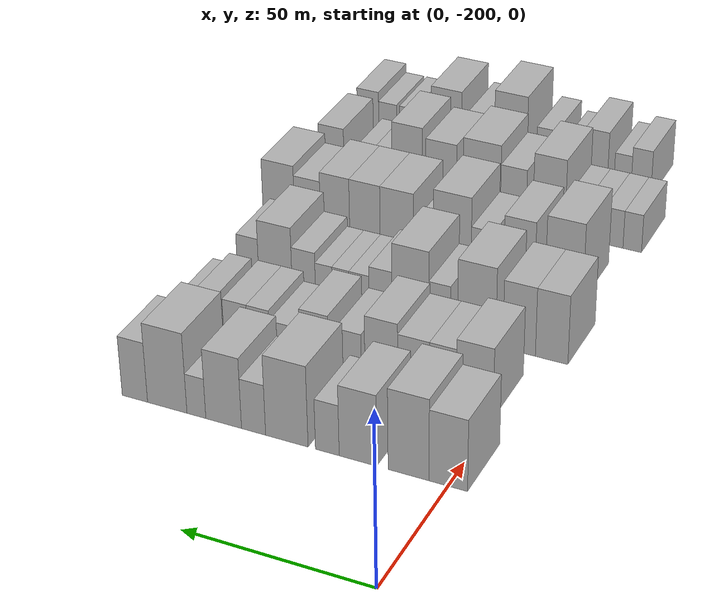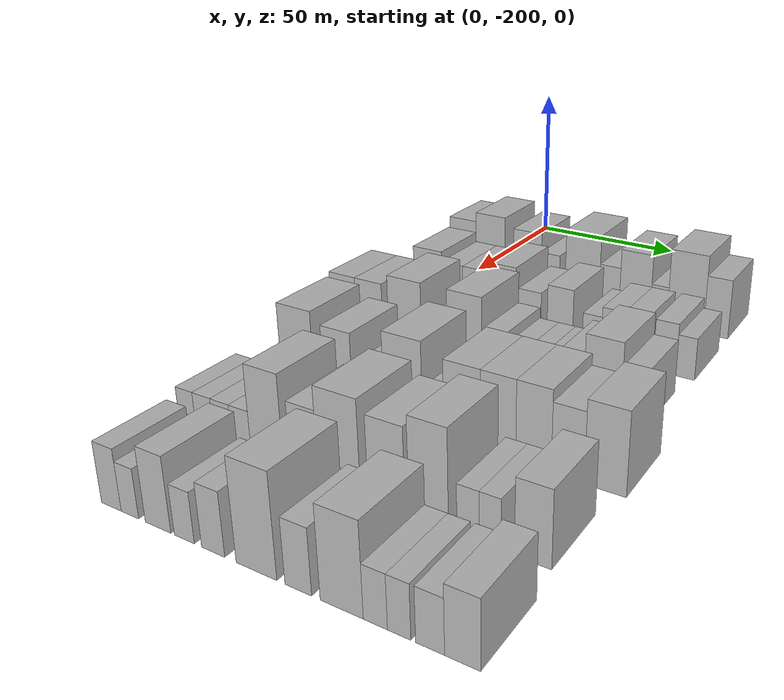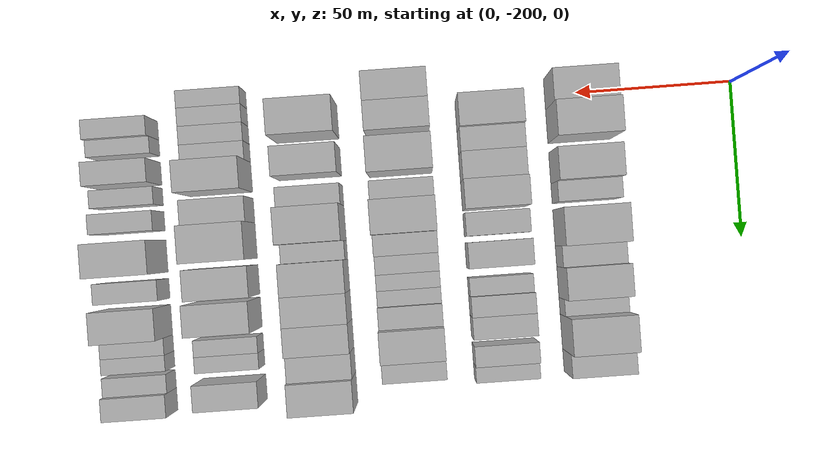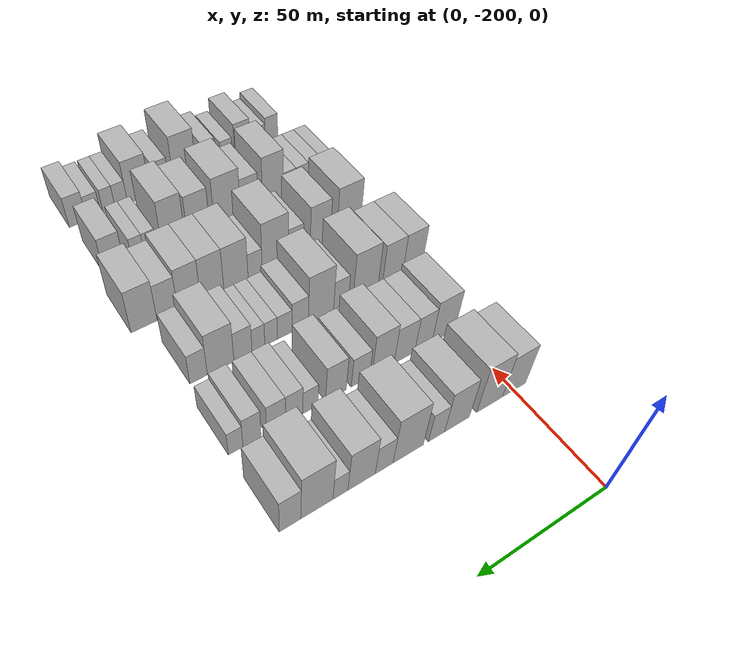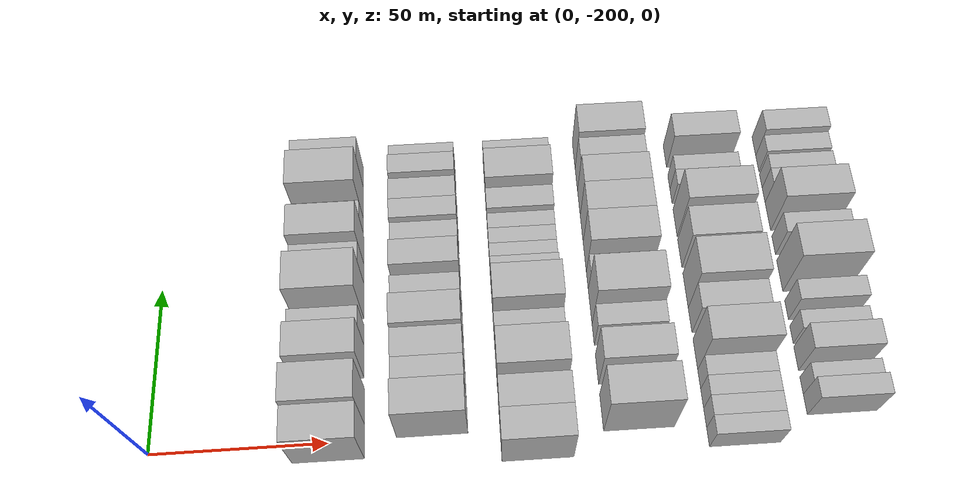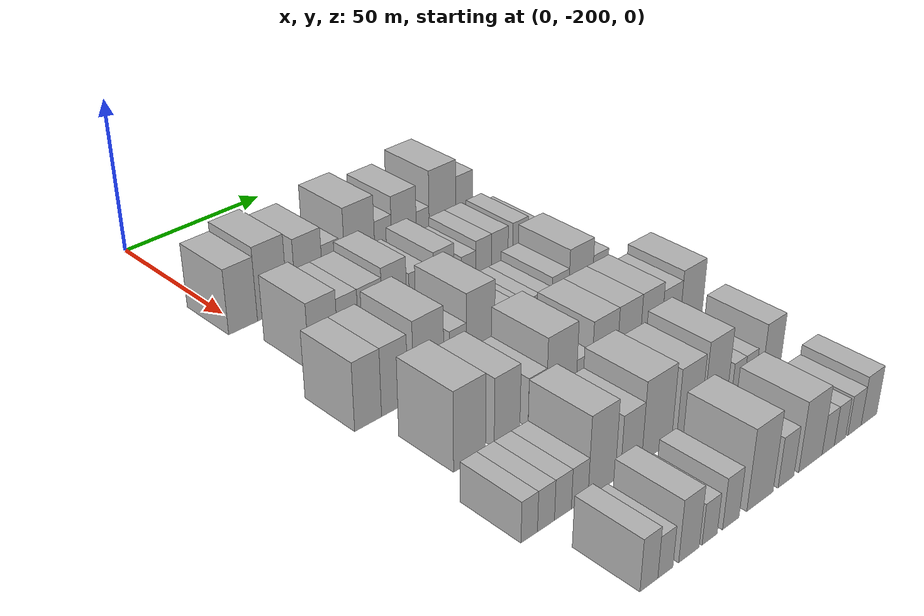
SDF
<sdf version="1.6">
 <world name="default">
  <model name="building_35">
   <static>1</static>
   <pose>50.0000 -200.0415 0 0.000000 0.000000 0.000000</pose>
   <link name="link">
    <pose>0 0 10.50 0 0 0</pose>
    <collision name="collision"><geometry><box><size>20.0000 9.9583 21.0000</size></box></geometry></collision>
    <visual name="visual">
     <cast_shadows>0</cast_shadows>
     <geometry><box><size>20.0000 9.9583 21.0000</size></box></geometry>
     <material>
      <script>
       <uri>model://HANNAS_wall/materials/scripts</uri>
       <uri>model://HANNAS_wall/materials/textures</uri>
       <name>vrc/HANNAS_wall</name>
      </script>
     </material>
    </visual>
   </link>
  </model>
  <model name="building_36">
   <static>1</static>
   <pose>50.0000 -189.6931 0 0.000000 0.000000 0.000000</pose>
   <link name="link">
    <pose>0 0 12.00 0 0 0</pose>
    <collision name="collision"><geometry><box><size>20.0000 10.7384 24.0000</size></box></geometry></collision>
    <visual name="visual">
     <cast_shadows>0</cast_shadows>
     <geometry><box><size>20.0000 10.7384 24.0000</size></box></geometry>
     <material>
      <script>
       <uri>model://HANNAS_wall/materials/scripts</uri>
       <uri>model://HANNAS_wall/materials/textures</uri>
       <name>vrc/HANNAS_wall</name>
      </script>
     </material>
    </visual>
   </link>
  </model>
  <model name="building_37">
   <static>1</static>
   <pose>50.0000 -176.3118 0 0.000000 0.000000 0.000000</pose>
   <link name="link">
    <pose>0 0 10.50 0 0 0</pose>
    <collision name="collision"><geometry><box><size>20.0000 10.0240 21.0000</size></box></geometry></collision>
    <visual name="visual">
     <cast_shadows>0</cast_shadows>
     <geometry><box><size>20.0000 10.0240 21.0000</size></box></geometry>
     <material>
      <script>
       <uri>model://HANNAS_wall/materials/scripts</uri>
       <uri>model://HANNAS_wall/materials/textures</uri>
       <name>vrc/HANNAS_wall</name>
      </script>
     </material>
    </visual>
   </link>
  </model>
  <model name="building_38">
   <static>1</static>
   <pose>50.0000 -168.1040 0 0.000000 0.000000 0.000000</pose>
   <link name="link">
    <pose>0 0 7.50 0 0 0</pose>
    <collision name="collision"><geometry><box><size>20.0000 6.3917 15.0000</size></box></geometry></collision>
    <visual name="visual">
     <cast_shadows>0</cast_shadows>
     <geometry><box><size>20.0000 6.3917 15.0000</size></box></geometry>
     <material>
      <script>
       <uri>model://HANNAS_wall/materials/scripts</uri>
       <uri>model://HANNAS_wall/materials/textures</uri>
       <name>vrc/HANNAS_wall</name>
      </script>
     </material>
    </visual>
   </link>
  </model>
  <model name="building_39">
   <static>1</static>
   <pose>50.0000 -157.1111 0 0.000000 0.000000 0.000000</pose>
   <link name="link">
    <pose>0 0 12.00 0 0 0</pose>
    <collision name="collision"><geometry><box><size>20.0000 11.5940 24.0000</size></box></geometry></collision>
    <visual name="visual">
     <cast_shadows>0</cast_shadows>
     <geometry><box><size>20.0000 11.5940 24.0000</size></box></geometry>
     <material>
      <script>
       <uri>model://HANNAS_wall/materials/scripts</uri>
       <uri>model://HANNAS_wall/materials/textures</uri>
       <name>vrc/HANNAS_wall</name>
      </script>
     </material>
    </visual>
   </link>
  </model>
  <model name="building_40">
   <static>1</static>
   <pose>50.0000 -147.9836 0 0.000000 0.000000 0.000000</pose>
   <link name="link">
    <pose>0 0 7.50 0 0 0</pose>
    <collision name="collision"><geometry><box><size>20.0000 6.6611 15.0000</size></box></geometry></collision>
    <visual name="visual">
     <cast_shadows>0</cast_shadows>
     <geometry><box><size>20.0000 6.6611 15.0000</size></box></geometry>
     <material>
      <script>
       <uri>model://HANNAS_wall/materials/scripts</uri>
       <uri>model://HANNAS_wall/materials/textures</uri>
       <name>vrc/HANNAS_wall</name>
      </script>
     </material>
    </visual>
   </link>
  </model>
  <model name="building_41">
   <static>1</static>
   <pose>50.0000 -139.6642 0 0.000000 0.000000 0.000000</pose>
   <link name="link">
    <pose>0 0 10.50 0 0 0</pose>
    <collision name="collision"><geometry><box><size>20.0000 9.9777 21.0000</size></box></geometry></collision>
    <visual name="visual">
     <cast_shadows>0</cast_shadows>
     <geometry><box><size>20.0000 9.9777 21.0000</size></box></geometry>
     <material>
      <script>
       <uri>model://HANNAS_wall/materials/scripts</uri>
       <uri>model://HANNAS_wall/materials/textures</uri>
       <name>vrc/HANNAS_wall</name>
      </script>
     </material>
    </visual>
   </link>
  </model>
  <model name="building_42">
   <static>1</static>
   <pose>50.0000 -132.0179 0 0.000000 0.000000 0.000000</pose>
   <link name="link">
    <pose>0 0 6.00 0 0 0</pose>
    <collision name="collision"><geometry><box><size>20.0000 5.3148 12.0000</size></box></geometry></collision>
    <visual name="visual">
     <cast_shadows>0</cast_shadows>
     <geometry><box><size>20.0000 5.3148 12.0000</size></box></geometry>
     <material>
      <script>
       <uri>model://HANNAS_wall/materials/scripts</uri>
       <uri>model://HANNAS_wall/materials/textures</uri>
       <name>vrc/HANNAS_wall</name>
      </script>
     </material>
    </visual>
   </link>
  </model>
  <model name="building_43">
   <static>1</static>
   <pose>50.0000 -123.7503 0 0.000000 0.000000 0.000000</pose>
   <link name="link">
    <pose>0 0 12.00 0 0 0</pose>
    <collision name="collision"><geometry><box><size>20.0000 11.2204 24.0000</size></box></geometry></collision>
    <visual name="visual">
     <cast_shadows>0</cast_shadows>
     <geometry><box><size>20.0000 11.2204 24.0000</size></box></geometry>
     <material>
      <script>
       <uri>model://HANNAS_wall/materials/scripts</uri>
       <uri>model://HANNAS_wall/materials/textures</uri>
       <name>vrc/HANNAS_wall</name>
      </script>
     </material>
    </visual>
   </link>
  </model>
  <model name="building_44">
   <static>1</static>
   <pose>50.0000 -114.4987 0 0.000000 0.000000 0.000000</pose>
   <link name="link">
    <pose>0 0 9.00 0 0 0</pose>
    <collision name="collision"><geometry><box><size>20.0000 7.2827 18.0000</size></box></geometry></collision>
    <visual name="visual">
     <cast_shadows>0</cast_shadows>
     <geometry><box><size>20.0000 7.2827 18.0000</size></box></geometry>
     <material>
      <script>
       <uri>model://HANNAS_wall/materials/scripts</uri>
       <uri>model://HANNAS_wall/materials/textures</uri>
       <name>vrc/HANNAS_wall</name>
      </script>
     </material>
    </visual>
   </link>
  </model>
  <model name="building_152">
   <static>1</static>
   <pose>79.0000 -194.5853 0 0.000000 0.000000 0.000000</pose>
   <link name="link">
    <pose>0 0 10.50 0 0 0</pose>
    <collision name="collision"><geometry><box><size>20.0000 10.0024 21.0000</size></box></geometry></collision>
    <visual name="visual">
     <cast_shadows>0</cast_shadows>
     <geometry><box><size>20.0000 10.0024 21.0000</size></box></geometry>
     <material>
      <script>
       <uri>model://HANNAS_wall/materials/scripts</uri>
       <uri>model://HANNAS_wall/materials/textures</uri>
       <name>vrc/HANNAS_wall</name>
      </script>
     </material>
    </visual>
   </link>
  </model>
  <model name="building_153">
   <static>1</static>
   <pose>79.0000 -185.9351 0 0.000000 0.000000 0.000000</pose>
   <link name="link">
    <pose>0 0 9.00 0 0 0</pose>
    <collision name="collision"><geometry><box><size>20.0000 7.2979 18.0000</size></box></geometry></collision>
    <visual name="visual">
     <cast_shadows>0</cast_shadows>
     <geometry><box><size>20.0000 7.2979 18.0000</size></box></geometry>
     <material>
      <script>
       <uri>model://HANNAS_wall/materials/scripts</uri>
       <uri>model://HANNAS_wall/materials/textures</uri>
       <name>vrc/HANNAS_wall</name>
      </script>
     </material>
    </visual>
   </link>
  </model>
  <model name="building_154">
   <static>1</static>
   <pose>79.0000 -177.9719 0 0.000000 0.000000 0.000000</pose>
   <link name="link">
    <pose>0 0 9.00 0 0 0</pose>
    <collision name="collision"><geometry><box><size>20.0000 8.6286 18.0000</size></box></geometry></collision>
    <visual name="visual">
     <cast_shadows>0</cast_shadows>
     <geometry><box><size>20.0000 8.6286 18.0000</size></box></geometry>
     <material>
      <script>
       <uri>model://HANNAS_wall/materials/scripts</uri>
       <uri>model://HANNAS_wall/materials/textures</uri>
       <name>vrc/HANNAS_wall</name>
      </script>
     </material>
    </visual>
   </link>
  </model>
  <model name="building_155">
   <static>1</static>
   <pose>79.0000 -169.1197 0 0.000000 0.000000 0.000000</pose>
   <link name="link">
    <pose>0 0 10.50 0 0 0</pose>
    <collision name="collision"><geometry><box><size>20.0000 9.0757 21.0000</size></box></geometry></collision>
    <visual name="visual">
     <cast_shadows>0</cast_shadows>
     <geometry><box><size>20.0000 9.0757 21.0000</size></box></geometry>
     <material>
      <script>
       <uri>model://HANNAS_wall/materials/scripts</uri>
       <uri>model://HANNAS_wall/materials/textures</uri>
       <name>vrc/HANNAS_wall</name>
      </script>
     </material>
    </visual>
   </link>
  </model>
  <model name="building_156">
   <static>1</static>
   <pose>79.0000 -159.9670 0 0.000000 0.000000 0.000000</pose>
   <link name="link">
    <pose>0 0 7.50 0 0 0</pose>
    <collision name="collision"><geometry><box><size>20.0000 7.2298 15.0000</size></box></geometry></collision>
    <visual name="visual">
     <cast_shadows>0</cast_shadows>
     <geometry><box><size>20.0000 7.2298 15.0000</size></box></geometry>
     <material>
      <script>
       <uri>model://HANNAS_wall/materials/scripts</uri>
       <uri>model://HANNAS_wall/materials/textures</uri>
       <name>vrc/HANNAS_wall</name>
      </script>
     </material>
    </visual>
   </link>
  </model>
  <model name="building_157">
   <static>1</static>
   <pose>79.0000 -150.3492 0 0.000000 0.000000 0.000000</pose>
   <link name="link">
    <pose>0 0 9.00 0 0 0</pose>
    <collision name="collision"><geometry><box><size>20.0000 8.0058 18.0000</size></box></geometry></collision>
    <visual name="visual">
     <cast_shadows>0</cast_shadows>
     <geometry><box><size>20.0000 8.0058 18.0000</size></box></geometry>
     <material>
      <script>
       <uri>model://HANNAS_wall/materials/scripts</uri>
       <uri>model://HANNAS_wall/materials/textures</uri>
       <name>vrc/HANNAS_wall</name>
      </script>
     </material>
    </visual>
   </link>
  </model>
  <model name="building_158">
   <static>1</static>
   <pose>79.0000 -140.4875 0 0.000000 0.000000 0.000000</pose>
   <link name="link">
    <pose>0 0 6.00 0 0 0</pose>
    <collision name="collision"><geometry><box><size>20.0000 5.7177 12.0000</size></box></geometry></collision>
    <visual name="visual">
     <cast_shadows>0</cast_shadows>
     <geometry><box><size>20.0000 5.7177 12.0000</size></box></geometry>
     <material>
      <script>
       <uri>model://HANNAS_wall/materials/scripts</uri>
       <uri>model://HANNAS_wall/materials/textures</uri>
       <name>vrc/HANNAS_wall</name>
      </script>
     </material>
    </visual>
   </link>
  </model>
  <model name="building_159">
   <static>1</static>
   <pose>79.0000 -134.4205 0 0.000000 0.000000 0.000000</pose>
   <link name="link">
    <pose>0 0 7.50 0 0 0</pose>
    <collision name="collision"><geometry><box><size>20.0000 6.4163 15.0000</size></box></geometry></collision>
    <visual name="visual">
     <cast_shadows>0</cast_shadows>
     <geometry><box><size>20.0000 6.4163 15.0000</size></box></geometry>
     <material>
      <script>
       <uri>model://HANNAS_wall/materials/scripts</uri>
       <uri>model://HANNAS_wall/materials/textures</uri>
       <name>vrc/HANNAS_wall</name>
      </script>
     </material>
    </visual>
   </link>
  </model>
  <model name="building_160">
   <static>1</static>
   <pose>79.0000 -127.7711 0 0.000000 0.000000 0.000000</pose>
   <link name="link">
    <pose>0 0 7.50 0 0 0</pose>
    <collision name="collision"><geometry><box><size>20.0000 6.8824 15.0000</size></box></geometry></collision>
    <visual name="visual">
     <cast_shadows>0</cast_shadows>
     <geometry><box><size>20.0000 6.8824 15.0000</size></box></geometry>
     <material>
      <script>
       <uri>model://HANNAS_wall/materials/scripts</uri>
       <uri>model://HANNAS_wall/materials/textures</uri>
       <name>vrc/HANNAS_wall</name>
      </script>
     </material>
    </visual>
   </link>
  </model>
  <model name="building_161">
   <static>1</static>
   <pose>79.0000 -119.1075 0 0.000000 0.000000 0.000000</pose>
   <link name="link">
    <pose>0 0 7.50 0 0 0</pose>
    <collision name="collision"><geometry><box><size>20.0000 6.4448 15.0000</size></box></geometry></collision>
    <visual name="visual">
     <cast_shadows>0</cast_shadows>
     <geometry><box><size>20.0000 6.4448 15.0000</size></box></geometry>
     <material>
      <script>
       <uri>model://HANNAS_wall/materials/scripts</uri>
       <uri>model://HANNAS_wall/materials/textures</uri>
       <name>vrc/HANNAS_wall</name>
      </script>
     </material>
    </visual>
   </link>
  </model>
  <model name="building_162">
   <static>1</static>
   <pose>79.0000 -113.2965 0 0.000000 0.000000 0.000000</pose>
   <link name="link">
    <pose>0 0 6.00 0 0 0</pose>
    <collision name="collision"><geometry><box><size>20.0000 5.1772 12.0000</size></box></geometry></collision>
    <visual name="visual">
     <cast_shadows>0</cast_shadows>
     <geometry><box><size>20.0000 5.1772 12.0000</size></box></geometry>
     <material>
      <script>
       <uri>model://HANNAS_wall/materials/scripts</uri>
       <uri>model://HANNAS_wall/materials/textures</uri>
       <name>vrc/HANNAS_wall</name>
      </script>
     </material>
    </visual>
   </link>
  </model>
  <model name="building_264">
   <static>1</static>
   <pose>108.0000 -203.7855 0 0.000000 0.000000 0.000000</pose>
   <link name="link">
    <pose>0 0 10.50 0 0 0</pose>
    <collision name="collision"><geometry><box><size>20.0000 8.9463 21.0000</size></box></geometry></collision>
    <visual name="visual">
     <cast_shadows>0</cast_shadows>
     <geometry><box><size>20.0000 8.9463 21.0000</size></box></geometry>
     <material>
      <script>
       <uri>model://HANNAS_wall/materials/scripts</uri>
       <uri>model://HANNAS_wall/materials/textures</uri>
       <name>vrc/HANNAS_wall</name>
      </script>
     </material>
    </visual>
   </link>
  </model>
  <model name="building_265">
   <static>1</static>
   <pose>108.0000 -194.8034 0 0.000000 0.000000 0.000000</pose>
   <link name="link">
    <pose>0 0 10.50 0 0 0</pose>
    <collision name="collision"><geometry><box><size>20.0000 9.0179 21.0000</size></box></geometry></collision>
    <visual name="visual">
     <cast_shadows>0</cast_shadows>
     <geometry><box><size>20.0000 9.0179 21.0000</size></box></geometry>
     <material>
      <script>
       <uri>model://HANNAS_wall/materials/scripts</uri>
       <uri>model://HANNAS_wall/materials/textures</uri>
       <name>vrc/HANNAS_wall</name>
      </script>
     </material>
    </visual>
   </link>
  </model>
  <model name="building_266">
   <static>1</static>
   <pose>108.0000 -182.8964 0 0.000000 0.000000 0.000000</pose>
   <link name="link">
    <pose>0 0 12.00 0 0 0</pose>
    <collision name="collision"><geometry><box><size>20.0000 10.7960 24.0000</size></box></geometry></collision>
    <visual name="visual">
     <cast_shadows>0</cast_shadows>
     <geometry><box><size>20.0000 10.7960 24.0000</size></box></geometry>
     <material>
      <script>
       <uri>model://HANNAS_wall/materials/scripts</uri>
       <uri>model://HANNAS_wall/materials/textures</uri>
       <name>vrc/HANNAS_wall</name>
      </script>
     </material>
    </visual>
   </link>
  </model>
  <model name="building_267">
   <static>1</static>
   <pose>108.0000 -172.3982 0 0.000000 0.000000 0.000000</pose>
   <link name="link">
    <pose>0 0 7.50 0 0 0</pose>
    <collision name="collision"><geometry><box><size>20.0000 6.2003 15.0000</size></box></geometry></collision>
    <visual name="visual">
     <cast_shadows>0</cast_shadows>
     <geometry><box><size>20.0000 6.2003 15.0000</size></box></geometry>
     <material>
      <script>
       <uri>model://HANNAS_wall/materials/scripts</uri>
       <uri>model://HANNAS_wall/materials/textures</uri>
       <name>vrc/HANNAS_wall</name>
      </script>
     </material>
    </visual>
   </link>
  </model>
  <model name="building_268">
   <static>1</static>
   <pose>108.0000 -164.0197 0 0.000000 0.000000 0.000000</pose>
   <link name="link">
    <pose>0 0 12.00 0 0 0</pose>
    <collision name="collision"><geometry><box><size>20.0000 10.5568 24.0000</size></box></geometry></collision>
    <visual name="visual">
     <cast_shadows>0</cast_shadows>
     <geometry><box><size>20.0000 10.5568 24.0000</size></box></geometry>
     <material>
      <script>
       <uri>model://HANNAS_wall/materials/scripts</uri>
       <uri>model://HANNAS_wall/materials/textures</uri>
       <name>vrc/HANNAS_wall</name>
      </script>
     </material>
    </visual>
   </link>
  </model>
  <model name="building_269">
   <static>1</static>
   <pose>108.0000 -155.4116 0 0.000000 0.000000 0.000000</pose>
   <link name="link">
    <pose>0 0 7.50 0 0 0</pose>
    <collision name="collision"><geometry><box><size>20.0000 6.6593 15.0000</size></box></geometry></collision>
    <visual name="visual">
     <cast_shadows>0</cast_shadows>
     <geometry><box><size>20.0000 6.6593 15.0000</size></box></geometry>
     <material>
      <script>
       <uri>model://HANNAS_wall/materials/scripts</uri>
       <uri>model://HANNAS_wall/materials/textures</uri>
       <name>vrc/HANNAS_wall</name>
      </script>
     </material>
    </visual>
   </link>
  </model>
  <model name="building_270">
   <static>1</static>
   <pose>108.0000 -149.1945 0 0.000000 0.000000 0.000000</pose>
   <link name="link">
    <pose>0 0 6.00 0 0 0</pose>
    <collision name="collision"><geometry><box><size>20.0000 5.7749 12.0000</size></box></geometry></collision>
    <visual name="visual">
     <cast_shadows>0</cast_shadows>
     <geometry><box><size>20.0000 5.7749 12.0000</size></box></geometry>
     <material>
      <script>
       <uri>model://HANNAS_wall/materials/scripts</uri>
       <uri>model://HANNAS_wall/materials/textures</uri>
       <name>vrc/HANNAS_wall</name>
      </script>
     </material>
    </visual>
   </link>
  </model>
  <model name="building_271">
   <static>1</static>
   <pose>108.0000 -143.8020 0 0.000000 0.000000 0.000000</pose>
   <link name="link">
    <pose>0 0 6.00 0 0 0</pose>
    <collision name="collision"><geometry><box><size>20.0000 5.0101 12.0000</size></box></geometry></collision>
    <visual name="visual">
     <cast_shadows>0</cast_shadows>
     <geometry><box><size>20.0000 5.0101 12.0000</size></box></geometry>
     <material>
      <script>
       <uri>model://HANNAS_wall/materials/scripts</uri>
       <uri>model://HANNAS_wall/materials/textures</uri>
       <name>vrc/HANNAS_wall</name>
      </script>
     </material>
    </visual>
   </link>
  </model>
  <model name="building_272">
   <static>1</static>
   <pose>108.0000 -138.8097 0 0.000000 0.000000 0.000000</pose>
   <link name="link">
    <pose>0 0 6.00 0 0 0</pose>
    <collision name="collision"><geometry><box><size>20.0000 4.9744 12.0000</size></box></geometry></collision>
    <visual name="visual">
     <cast_shadows>0</cast_shadows>
     <geometry><box><size>20.0000 4.9744 12.0000</size></box></geometry>
     <material>
      <script>
       <uri>model://HANNAS_wall/materials/scripts</uri>
       <uri>model://HANNAS_wall/materials/textures</uri>
       <name>vrc/HANNAS_wall</name>
      </script>
     </material>
    </visual>
   </link>
  </model>
  <model name="building_273">
   <static>1</static>
   <pose>108.0000 -132.8441 0 0.000000 0.000000 0.000000</pose>
   <link name="link">
    <pose>0 0 7.50 0 0 0</pose>
    <collision name="collision"><geometry><box><size>20.0000 6.9568 15.0000</size></box></geometry></collision>
    <visual name="visual">
     <cast_shadows>0</cast_shadows>
     <geometry><box><size>20.0000 6.9568 15.0000</size></box></geometry>
     <material>
      <script>
       <uri>model://HANNAS_wall/materials/scripts</uri>
       <uri>model://HANNAS_wall/materials/textures</uri>
       <name>vrc/HANNAS_wall</name>
      </script>
     </material>
    </visual>
   </link>
  </model>
  <model name="building_274">
   <static>1</static>
   <pose>108.0000 -124.3556 0 0.000000 0.000000 0.000000</pose>
   <link name="link">
    <pose>0 0 10.50 0 0 0</pose>
    <collision name="collision"><geometry><box><size>20.0000 10.0202 21.0000</size></box></geometry></collision>
    <visual name="visual">
     <cast_shadows>0</cast_shadows>
     <geometry><box><size>20.0000 10.0202 21.0000</size></box></geometry>
     <material>
      <script>
       <uri>model://HANNAS_wall/materials/scripts</uri>
       <uri>model://HANNAS_wall/materials/textures</uri>
       <name>vrc/HANNAS_wall</name>
      </script>
     </material>
    </visual>
   </link>
  </model>
  <model name="building_275">
   <static>1</static>
   <pose>108.0000 -116.1146 0 0.000000 0.000000 0.000000</pose>
   <link name="link">
    <pose>0 0 7.50 0 0 0</pose>
    <collision name="collision"><geometry><box><size>20.0000 6.4617 15.0000</size></box></geometry></collision>
    <visual name="visual">
     <cast_shadows>0</cast_shadows>
     <geometry><box><size>20.0000 6.4617 15.0000</size></box></geometry>
     <material>
      <script>
       <uri>model://HANNAS_wall/materials/scripts</uri>
       <uri>model://HANNAS_wall/materials/textures</uri>
       <name>vrc/HANNAS_wall</name>
      </script>
     </material>
    </visual>
   </link>
  </model>
  <model name="building_375">
   <static>1</static>
   <pose>137.0000 -196.0511 0 0.000000 0.000000 0.000000</pose>
   <link name="link">
    <pose>0 0 12.00 0 0 0</pose>
    <collision name="collision"><geometry><box><size>20.0000 10.8290 24.0000</size></box></geometry></collision>
    <visual name="visual">
     <cast_shadows>0</cast_shadows>
     <geometry><box><size>20.0000 10.8290 24.0000</size></box></geometry>
     <material>
      <script>
       <uri>model://HANNAS_wall/materials/scripts</uri>
       <uri>model://HANNAS_wall/materials/textures</uri>
       <name>vrc/HANNAS_wall</name>
      </script>
     </material>
    </visual>
   </link>
  </model>
  <model name="building_376">
   <static>1</static>
   <pose>137.0000 -183.1055 0 0.000000 0.000000 0.000000</pose>
   <link name="link">
    <pose>0 0 10.50 0 0 0</pose>
    <collision name="collision"><geometry><box><size>20.0000 9.0621 21.0000</size></box></geometry></collision>
    <visual name="visual">
     <cast_shadows>0</cast_shadows>
     <geometry><box><size>20.0000 9.0621 21.0000</size></box></geometry>
     <material>
      <script>
       <uri>model://HANNAS_wall/materials/scripts</uri>
       <uri>model://HANNAS_wall/materials/textures</uri>
       <name>vrc/HANNAS_wall</name>
      </script>
     </material>
    </visual>
   </link>
  </model>
  <model name="building_377">
   <static>1</static>
   <pose>137.0000 -172.3008 0 0.000000 0.000000 0.000000</pose>
   <link name="link">
    <pose>0 0 7.50 0 0 0</pose>
    <collision name="collision"><geometry><box><size>20.0000 6.5472 15.0000</size></box></geometry></collision>
    <visual name="visual">
     <cast_shadows>0</cast_shadows>
     <geometry><box><size>20.0000 6.5472 15.0000</size></box></geometry>
     <material>
      <script>
       <uri>model://HANNAS_wall/materials/scripts</uri>
       <uri>model://HANNAS_wall/materials/textures</uri>
       <name>vrc/HANNAS_wall</name>
      </script>
     </material>
    </visual>
   </link>
  </model>
  <model name="building_378">
   <static>1</static>
   <pose>137.0000 -163.4289 0 0.000000 0.000000 0.000000</pose>
   <link name="link">
    <pose>0 0 12.00 0 0 0</pose>
    <collision name="collision"><geometry><box><size>20.0000 11.1966 24.0000</size></box></geometry></collision>
    <visual name="visual">
     <cast_shadows>0</cast_shadows>
     <geometry><box><size>20.0000 11.1966 24.0000</size></box></geometry>
     <material>
      <script>
       <uri>model://HANNAS_wall/materials/scripts</uri>
       <uri>model://HANNAS_wall/materials/textures</uri>
       <name>vrc/HANNAS_wall</name>
      </script>
     </material>
    </visual>
   </link>
  </model>
  <model name="building_379">
   <static>1</static>
   <pose>137.0000 -154.8506 0 0.000000 0.000000 0.000000</pose>
   <link name="link">
    <pose>0 0 6.00 0 0 0</pose>
    <collision name="collision"><geometry><box><size>20.0000 5.9600 12.0000</size></box></geometry></collision>
    <visual name="visual">
     <cast_shadows>0</cast_shadows>
     <geometry><box><size>20.0000 5.9600 12.0000</size></box></geometry>
     <material>
      <script>
       <uri>model://HANNAS_wall/materials/scripts</uri>
       <uri>model://HANNAS_wall/materials/textures</uri>
       <name>vrc/HANNAS_wall</name>
      </script>
     </material>
    </visual>
   </link>
  </model>
  <model name="building_380">
   <static>1</static>
   <pose>137.0000 -146.8664 0 0.000000 0.000000 0.000000</pose>
   <link name="link">
    <pose>0 0 10.50 0 0 0</pose>
    <collision name="collision"><geometry><box><size>20.0000 10.0086 21.0000</size></box></geometry></collision>
    <visual name="visual">
     <cast_shadows>0</cast_shadows>
     <geometry><box><size>20.0000 10.0086 21.0000</size></box></geometry>
     <material>
      <script>
       <uri>model://HANNAS_wall/materials/scripts</uri>
       <uri>model://HANNAS_wall/materials/textures</uri>
       <name>vrc/HANNAS_wall</name>
      </script>
     </material>
    </visual>
   </link>
  </model>
  <model name="building_381">
   <static>1</static>
   <pose>137.0000 -137.2171 0 0.000000 0.000000 0.000000</pose>
   <link name="link">
    <pose>0 0 10.50 0 0 0</pose>
    <collision name="collision"><geometry><box><size>20.0000 9.2900 21.0000</size></box></geometry></collision>
    <visual name="visual">
     <cast_shadows>0</cast_shadows>
     <geometry><box><size>20.0000 9.2900 21.0000</size></box></geometry>
     <material>
      <script>
       <uri>model://HANNAS_wall/materials/scripts</uri>
       <uri>model://HANNAS_wall/materials/textures</uri>
       <name>vrc/HANNAS_wall</name>
      </script>
     </material>
    </visual>
   </link>
  </model>
  <model name="building_382">
   <static>1</static>
   <pose>137.0000 -128.0735 0 0.000000 0.000000 0.000000</pose>
   <link name="link">
    <pose>0 0 10.50 0 0 0</pose>
    <collision name="collision"><geometry><box><size>20.0000 8.9971 21.0000</size></box></geometry></collision>
    <visual name="visual">
     <cast_shadows>0</cast_shadows>
     <geometry><box><size>20.0000 8.9971 21.0000</size></box></geometry>
     <material>
      <script>
       <uri>model://HANNAS_wall/materials/scripts</uri>
       <uri>model://HANNAS_wall/materials/textures</uri>
       <name>vrc/HANNAS_wall</name>
      </script>
     </material>
    </visual>
   </link>
  </model>
  <model name="building_383">
   <static>1</static>
   <pose>137.0000 -119.5507 0 0.000000 0.000000 0.000000</pose>
   <link name="link">
    <pose>0 0 9.00 0 0 0</pose>
    <collision name="collision"><geometry><box><size>20.0000 8.0484 18.0000</size></box></geometry></collision>
    <visual name="visual">
     <cast_shadows>0</cast_shadows>
     <geometry><box><size>20.0000 8.0484 18.0000</size></box></geometry>
     <material>
      <script>
       <uri>model://HANNAS_wall/materials/scripts</uri>
       <uri>model://HANNAS_wall/materials/textures</uri>
       <name>vrc/HANNAS_wall</name>
      </script>
     </material>
    </visual>
   </link>
  </model>
  <model name="building_384">
   <static>1</static>
   <pose>137.0000 -110.5878 0 0.000000 0.000000 0.000000</pose>
   <link name="link">
    <pose>0 0 10.50 0 0 0</pose>
    <collision name="collision"><geometry><box><size>20.0000 9.8775 21.0000</size></box></geometry></collision>
    <visual name="visual">
     <cast_shadows>0</cast_shadows>
     <geometry><box><size>20.0000 9.8775 21.0000</size></box></geometry>
     <material>
      <script>
       <uri>model://HANNAS_wall/materials/scripts</uri>
       <uri>model://HANNAS_wall/materials/textures</uri>
       <name>vrc/HANNAS_wall</name>
      </script>
     </material>
    </visual>
   </link>
  </model>
  <model name="building_484">
   <static>1</static>
   <pose>166.0000 -205.1478 0 0.000000 0.000000 0.000000</pose>
   <link name="link">
    <pose>0 0 6.00 0 0 0</pose>
    <collision name="collision"><geometry><box><size>20.0000 5.4146 12.0000</size></box></geometry></collision>
    <visual name="visual">
     <cast_shadows>0</cast_shadows>
     <geometry><box><size>20.0000 5.4146 12.0000</size></box></geometry>
     <material>
      <script>
       <uri>model://HANNAS_wall/materials/scripts</uri>
       <uri>model://HANNAS_wall/materials/textures</uri>
       <name>vrc/HANNAS_wall</name>
      </script>
     </material>
    </visual>
   </link>
  </model>
  <model name="building_485">
   <static>1</static>
   <pose>166.0000 -199.5939 0 0.000000 0.000000 0.000000</pose>
   <link name="link">
    <pose>0 0 6.00 0 0 0</pose>
    <collision name="collision"><geometry><box><size>20.0000 5.6932 12.0000</size></box></geometry></collision>
    <visual name="visual">
     <cast_shadows>0</cast_shadows>
     <geometry><box><size>20.0000 5.6932 12.0000</size></box></geometry>
     <material>
      <script>
       <uri>model://HANNAS_wall/materials/scripts</uri>
       <uri>model://HANNAS_wall/materials/textures</uri>
       <name>vrc/HANNAS_wall</name>
      </script>
     </material>
    </visual>
   </link>
  </model>
  <model name="building_486">
   <static>1</static>
   <pose>166.0000 -193.8655 0 0.000000 0.000000 0.000000</pose>
   <link name="link">
    <pose>0 0 6.00 0 0 0</pose>
    <collision name="collision"><geometry><box><size>20.0000 5.7635 12.0000</size></box></geometry></collision>
    <visual name="visual">
     <cast_shadows>0</cast_shadows>
     <geometry><box><size>20.0000 5.7635 12.0000</size></box></geometry>
     <material>
      <script>
       <uri>model://HANNAS_wall/materials/scripts</uri>
       <uri>model://HANNAS_wall/materials/textures</uri>
       <name>vrc/HANNAS_wall</name>
      </script>
     </material>
    </visual>
   </link>
  </model>
  <model name="building_487">
   <static>1</static>
   <pose>166.0000 -188.0762 0 0.000000 0.000000 0.000000</pose>
   <link name="link">
    <pose>0 0 6.00 0 0 0</pose>
    <collision name="collision"><geometry><box><size>20.0000 5.8152 12.0000</size></box></geometry></collision>
    <visual name="visual">
     <cast_shadows>0</cast_shadows>
     <geometry><box><size>20.0000 5.8152 12.0000</size></box></geometry>
     <material>
      <script>
       <uri>model://HANNAS_wall/materials/scripts</uri>
       <uri>model://HANNAS_wall/materials/textures</uri>
       <name>vrc/HANNAS_wall</name>
      </script>
     </material>
    </visual>
   </link>
  </model>
  <model name="building_488">
   <static>1</static>
   <pose>166.0000 -180.3485 0 0.000000 0.000000 0.000000</pose>
   <link name="link">
    <pose>0 0 12.00 0 0 0</pose>
    <collision name="collision"><geometry><box><size>20.0000 9.6402 24.0000</size></box></geometry></collision>
    <visual name="visual">
     <cast_shadows>0</cast_shadows>
     <geometry><box><size>20.0000 9.6402 24.0000</size></box></geometry>
     <material>
      <script>
       <uri>model://HANNAS_wall/materials/scripts</uri>
       <uri>model://HANNAS_wall/materials/textures</uri>
       <name>vrc/HANNAS_wall</name>
      </script>
     </material>
    </visual>
   </link>
  </model>
  <model name="building_489">
   <static>1</static>
   <pose>166.0000 -169.5950 0 0.000000 0.000000 0.000000</pose>
   <link name="link">
    <pose>0 0 9.00 0 0 0</pose>
    <collision name="collision"><geometry><box><size>20.0000 7.8668 18.0000</size></box></geometry></collision>
    <visual name="visual">
     <cast_shadows>0</cast_shadows>
     <geometry><box><size>20.0000 7.8668 18.0000</size></box></geometry>
     <material>
      <script>
       <uri>model://HANNAS_wall/materials/scripts</uri>
       <uri>model://HANNAS_wall/materials/textures</uri>
       <name>vrc/HANNAS_wall</name>
      </script>
     </material>
    </visual>
   </link>
  </model>
  <model name="building_490">
   <static>1</static>
   <pose>166.0000 -159.9276 0 0.000000 0.000000 0.000000</pose>
   <link name="link">
    <pose>0 0 12.00 0 0 0</pose>
    <collision name="collision"><geometry><box><size>20.0000 11.4679 24.0000</size></box></geometry></collision>
    <visual name="visual">
     <cast_shadows>0</cast_shadows>
     <geometry><box><size>20.0000 11.4679 24.0000</size></box></geometry>
     <material>
      <script>
       <uri>model://HANNAS_wall/materials/scripts</uri>
       <uri>model://HANNAS_wall/materials/textures</uri>
       <name>vrc/HANNAS_wall</name>
      </script>
     </material>
    </visual>
   </link>
  </model>
  <model name="building_491">
   <static>1</static>
   <pose>166.0000 -147.4486 0 0.000000 0.000000 0.000000</pose>
   <link name="link">
    <pose>0 0 10.50 0 0 0</pose>
    <collision name="collision"><geometry><box><size>20.0000 9.4901 21.0000</size></box></geometry></collision>
    <visual name="visual">
     <cast_shadows>0</cast_shadows>
     <geometry><box><size>20.0000 9.4901 21.0000</size></box></geometry>
     <material>
      <script>
       <uri>model://HANNAS_wall/materials/scripts</uri>
       <uri>model://HANNAS_wall/materials/textures</uri>
       <name>vrc/HANNAS_wall</name>
      </script>
     </material>
    </visual>
   </link>
  </model>
  <model name="building_492">
   <static>1</static>
   <pose>166.0000 -136.8996 0 0.000000 0.000000 0.000000</pose>
   <link name="link">
    <pose>0 0 12.00 0 0 0</pose>
    <collision name="collision"><geometry><box><size>20.0000 9.6079 24.0000</size></box></geometry></collision>
    <visual name="visual">
     <cast_shadows>0</cast_shadows>
     <geometry><box><size>20.0000 9.6079 24.0000</size></box></geometry>
     <material>
      <script>
       <uri>model://HANNAS_wall/materials/scripts</uri>
       <uri>model://HANNAS_wall/materials/textures</uri>
       <name>vrc/HANNAS_wall</name>
      </script>
     </material>
    </visual>
   </link>
  </model>
  <model name="building_493">
   <static>1</static>
   <pose>166.0000 -127.5094 0 0.000000 0.000000 0.000000</pose>
   <link name="link">
    <pose>0 0 6.00 0 0 0</pose>
    <collision name="collision"><geometry><box><size>20.0000 5.1725 12.0000</size></box></geometry></collision>
    <visual name="visual">
     <cast_shadows>0</cast_shadows>
     <geometry><box><size>20.0000 5.1725 12.0000</size></box></geometry>
     <material>
      <script>
       <uri>model://HANNAS_wall/materials/scripts</uri>
       <uri>model://HANNAS_wall/materials/textures</uri>
       <name>vrc/HANNAS_wall</name>
      </script>
     </material>
    </visual>
   </link>
  </model>
  <model name="building_494">
   <static>1</static>
   <pose>166.0000 -122.4040 0 0.000000 0.000000 0.000000</pose>
   <link name="link">
    <pose>0 0 6.00 0 0 0</pose>
    <collision name="collision"><geometry><box><size>20.0000 5.0383 12.0000</size></box></geometry></collision>
    <visual name="visual">
     <cast_shadows>0</cast_shadows>
     <geometry><box><size>20.0000 5.0383 12.0000</size></box></geometry>
     <material>
      <script>
       <uri>model://HANNAS_wall/materials/scripts</uri>
       <uri>model://HANNAS_wall/materials/textures</uri>
       <name>vrc/HANNAS_wall</name>
      </script>
     </material>
    </visual>
   </link>
  </model>
  <model name="building_495">
   <static>1</static>
   <pose>166.0000 -112.8321 0 0.000000 0.000000 0.000000</pose>
   <link name="link">
    <pose>0 0 9.00 0 0 0</pose>
    <collision name="collision"><geometry><box><size>20.0000 8.1055 18.0000</size></box></geometry></collision>
    <visual name="visual">
     <cast_shadows>0</cast_shadows>
     <geometry><box><size>20.0000 8.1055 18.0000</size></box></geometry>
     <material>
      <script>
       <uri>model://HANNAS_wall/materials/scripts</uri>
       <uri>model://HANNAS_wall/materials/textures</uri>
       <name>vrc/HANNAS_wall</name>
      </script>
     </material>
    </visual>
   </link>
  </model>
  <model name="building_599">
   <static>1</static>
   <pose>195.0000 -197.4465 0 0.000000 0.000000 0.000000</pose>
   <link name="link">
    <pose>0 0 7.50 0 0 0</pose>
    <collision name="collision"><geometry><box><size>20.0000 6.0387 15.0000</size></box></geometry></collision>
    <visual name="visual">
     <cast_shadows>0</cast_shadows>
     <geometry><box><size>20.0000 6.0387 15.0000</size></box></geometry>
     <material>
      <script>
       <uri>model://HANNAS_wall/materials/scripts</uri>
       <uri>model://HANNAS_wall/materials/textures</uri>
       <name>vrc/HANNAS_wall</name>
      </script>
     </material>
    </visual>
   </link>
  </model>
  <model name="building_600">
   <static>1</static>
   <pose>195.0000 -191.8072 0 0.000000 0.000000 0.000000</pose>
   <link name="link">
    <pose>0 0 6.00 0 0 0</pose>
    <collision name="collision"><geometry><box><size>20.0000 5.2400 12.0000</size></box></geometry></collision>
    <visual name="visual">
     <cast_shadows>0</cast_shadows>
     <geometry><box><size>20.0000 5.2400 12.0000</size></box></geometry>
     <material>
      <script>
       <uri>model://HANNAS_wall/materials/scripts</uri>
       <uri>model://HANNAS_wall/materials/textures</uri>
       <name>vrc/HANNAS_wall</name>
      </script>
     </material>
    </visual>
   </link>
  </model>
  <model name="building_601">
   <static>1</static>
   <pose>195.0000 -183.5156 0 0.000000 0.000000 0.000000</pose>
   <link name="link">
    <pose>0 0 9.00 0 0 0</pose>
    <collision name="collision"><geometry><box><size>20.0000 7.3433 18.0000</size></box></geometry></collision>
    <visual name="visual">
     <cast_shadows>0</cast_shadows>
     <geometry><box><size>20.0000 7.3433 18.0000</size></box></geometry>
     <material>
      <script>
       <uri>model://HANNAS_wall/materials/scripts</uri>
       <uri>model://HANNAS_wall/materials/textures</uri>
       <name>vrc/HANNAS_wall</name>
      </script>
     </material>
    </visual>
   </link>
  </model>
  <model name="building_602">
   <static>1</static>
   <pose>195.0000 -176.0654 0 0.000000 0.000000 0.000000</pose>
   <link name="link">
    <pose>0 0 6.00 0 0 0</pose>
    <collision name="collision"><geometry><box><size>20.0000 5.5571 12.0000</size></box></geometry></collision>
    <visual name="visual">
     <cast_shadows>0</cast_shadows>
     <geometry><box><size>20.0000 5.5571 12.0000</size></box></geometry>
     <material>
      <script>
       <uri>model://HANNAS_wall/materials/scripts</uri>
       <uri>model://HANNAS_wall/materials/textures</uri>
       <name>vrc/HANNAS_wall</name>
      </script>
     </material>
    </visual>
   </link>
  </model>
  <model name="building_603">
   <static>1</static>
   <pose>195.0000 -168.1896 0 0.000000 0.000000 0.000000</pose>
   <link name="link">
    <pose>0 0 7.50 0 0 0</pose>
    <collision name="collision"><geometry><box><size>20.0000 6.1944 15.0000</size></box></geometry></collision>
    <visual name="visual">
     <cast_shadows>0</cast_shadows>
     <geometry><box><size>20.0000 6.1944 15.0000</size></box></geometry>
     <material>
      <script>
       <uri>model://HANNAS_wall/materials/scripts</uri>
       <uri>model://HANNAS_wall/materials/textures</uri>
       <name>vrc/HANNAS_wall</name>
      </script>
     </material>
    </visual>
   </link>
  </model>
  <model name="building_604">
   <static>1</static>
   <pose>195.0000 -156.9490 0 0.000000 0.000000 0.000000</pose>
   <link name="link">
    <pose>0 0 12.00 0 0 0</pose>
    <collision name="collision"><geometry><box><size>20.0000 10.2869 24.0000</size></box></geometry></collision>
    <visual name="visual">
     <cast_shadows>0</cast_shadows>
     <geometry><box><size>20.0000 10.2869 24.0000</size></box></geometry>
     <material>
      <script>
       <uri>model://HANNAS_wall/materials/scripts</uri>
       <uri>model://HANNAS_wall/materials/textures</uri>
       <name>vrc/HANNAS_wall</name>
      </script>
     </material>
    </visual>
   </link>
  </model>
  <model name="building_605">
   <static>1</static>
   <pose>195.0000 -146.6033 0 0.000000 0.000000 0.000000</pose>
   <link name="link">
    <pose>0 0 7.50 0 0 0</pose>
    <collision name="collision"><geometry><box><size>20.0000 6.4046 15.0000</size></box></geometry></collision>
    <visual name="visual">
     <cast_shadows>0</cast_shadows>
     <geometry><box><size>20.0000 6.4046 15.0000</size></box></geometry>
     <material>
      <script>
       <uri>model://HANNAS_wall/materials/scripts</uri>
       <uri>model://HANNAS_wall/materials/textures</uri>
       <name>vrc/HANNAS_wall</name>
      </script>
     </material>
    </visual>
   </link>
  </model>
  <model name="building_606">
   <static>1</static>
   <pose>195.0000 -136.4965 0 0.000000 0.000000 0.000000</pose>
   <link name="link">
    <pose>0 0 10.50 0 0 0</pose>
    <collision name="collision"><geometry><box><size>20.0000 9.8089 21.0000</size></box></geometry></collision>
    <visual name="visual">
     <cast_shadows>0</cast_shadows>
     <geometry><box><size>20.0000 9.8089 21.0000</size></box></geometry>
     <material>
      <script>
       <uri>model://HANNAS_wall/materials/scripts</uri>
       <uri>model://HANNAS_wall/materials/textures</uri>
       <name>vrc/HANNAS_wall</name>
      </script>
     </material>
    </visual>
   </link>
  </model>
  <model name="building_607">
   <static>1</static>
   <pose>195.0000 -128.9537 0 0.000000 0.000000 0.000000</pose>
   <link name="link">
    <pose>0 0 6.00 0 0 0</pose>
    <collision name="collision"><geometry><box><size>20.0000 5.2767 12.0000</size></box></geometry></collision>
    <visual name="visual">
     <cast_shadows>0</cast_shadows>
     <geometry><box><size>20.0000 5.2767 12.0000</size></box></geometry>
     <material>
      <script>
       <uri>model://HANNAS_wall/materials/scripts</uri>
       <uri>model://HANNAS_wall/materials/textures</uri>
       <name>vrc/HANNAS_wall</name>
      </script>
     </material>
    </visual>
   </link>
  </model>
  <model name="building_608">
   <static>1</static>
   <pose>195.0000 -123.8383 0 0.000000 0.000000 0.000000</pose>
   <link name="link">
    <pose>0 0 6.00 0 0 0</pose>
    <collision name="collision"><geometry><box><size>20.0000 4.9541 12.0000</size></box></geometry></collision>
    <visual name="visual">
     <cast_shadows>0</cast_shadows>
     <geometry><box><size>20.0000 4.9541 12.0000</size></box></geometry>
     <material>
      <script>
       <uri>model://HANNAS_wall/materials/scripts</uri>
       <uri>model://HANNAS_wall/materials/textures</uri>
       <name>vrc/HANNAS_wall</name>
      </script>
     </material>
    </visual>
   </link>
  </model>
  <model name="building_609">
   <static>1</static>
   <pose>195.0000 -117.4055 0 0.000000 0.000000 0.000000</pose>
   <link name="link">
    <pose>0 0 6.00 0 0 0</pose>
    <collision name="collision"><geometry><box><size>20.0000 5.9115 12.0000</size></box></geometry></collision>
    <visual name="visual">
     <cast_shadows>0</cast_shadows>
     <geometry><box><size>20.0000 5.9115 12.0000</size></box></geometry>
     <material>
      <script>
       <uri>model://HANNAS_wall/materials/scripts</uri>
       <uri>model://HANNAS_wall/materials/textures</uri>
       <name>vrc/HANNAS_wall</name>
      </script>
     </material>
    </visual>
   </link>
  </model>
  <model name="building_610">
   <static>1</static>
   <pose>195.0000 -110.8842 0 0.000000 0.000000 0.000000</pose>
   <link name="link">
    <pose>0 0 7.50 0 0 0</pose>
    <collision name="collision"><geometry><box><size>20.0000 7.1310 15.0000</size></box></geometry></collision>
    <visual name="visual">
     <cast_shadows>0</cast_shadows>
     <geometry><box><size>20.0000 7.1310 15.0000</size></box></geometry>
     <material>
      <script>
       <uri>model://HANNAS_wall/materials/scripts</uri>
       <uri>model://HANNAS_wall/materials/textures</uri>
       <name>vrc/HANNAS_wall</name>
      </script>
     </material>
    </visual>
   </link>
  </model>
 </world>
</sdf>
